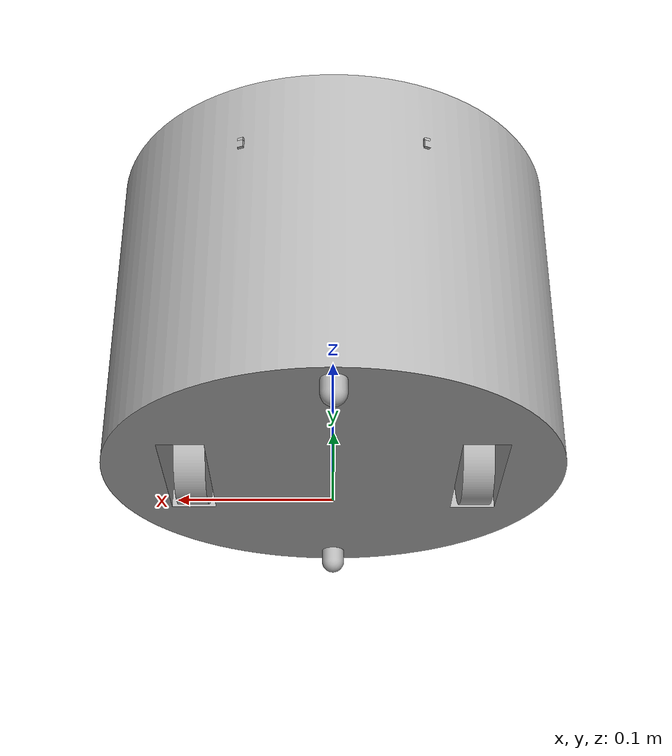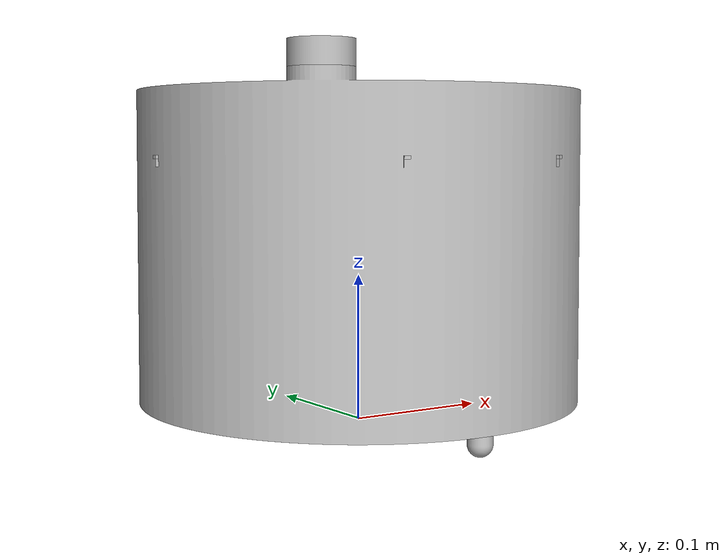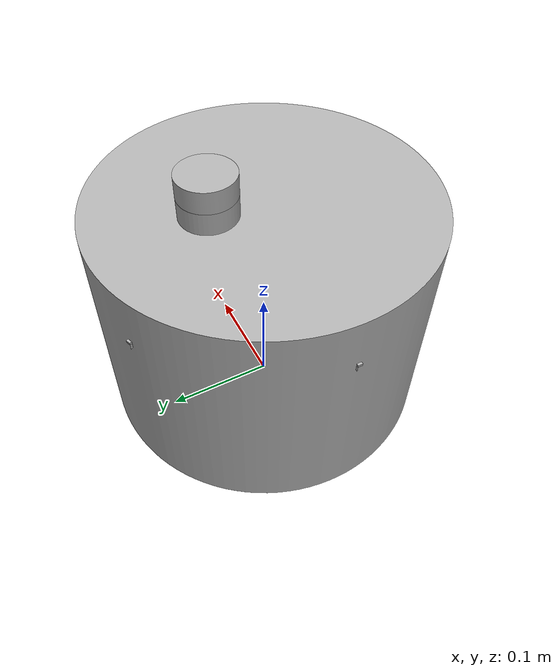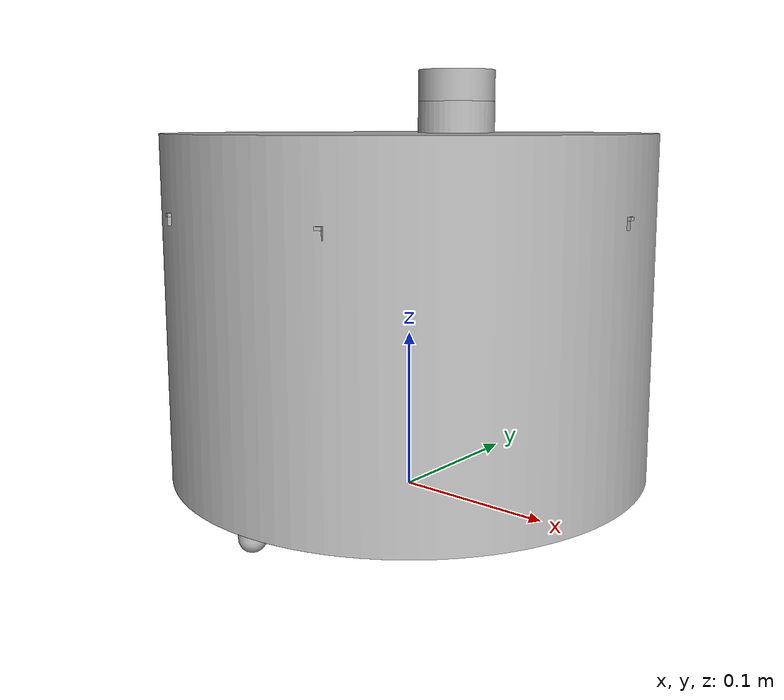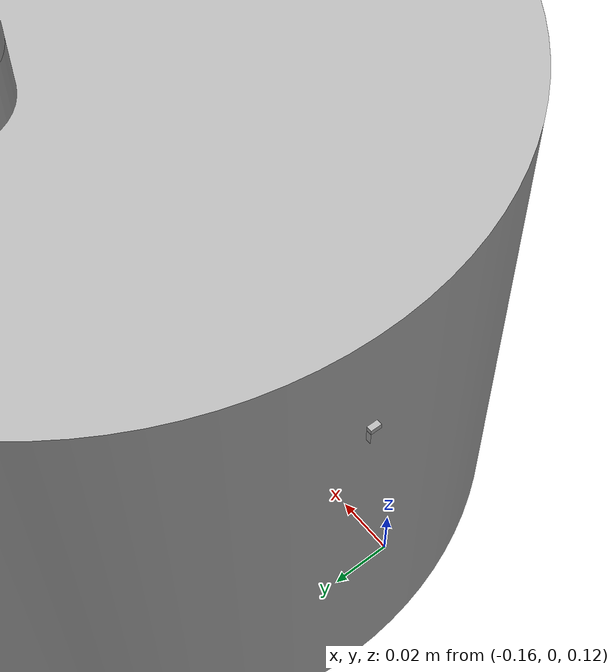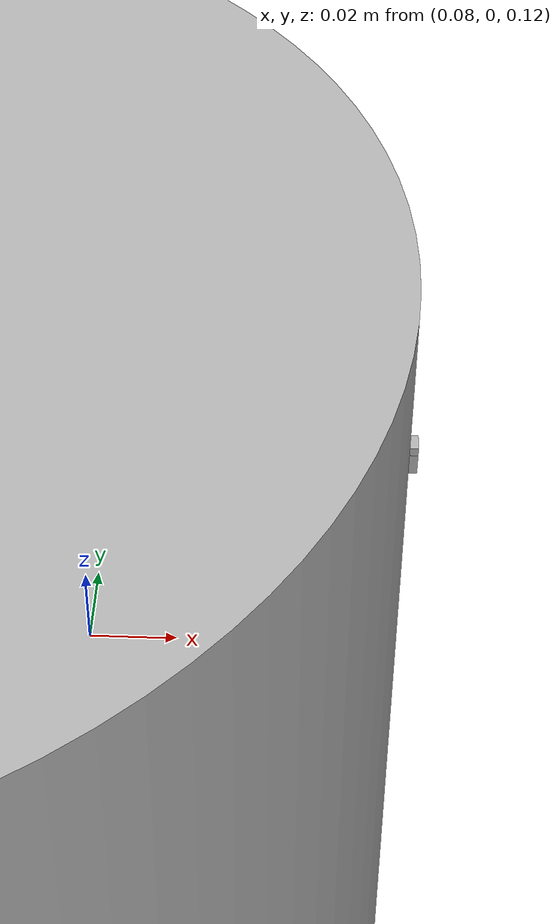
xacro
<?xml version="1.0" ?>
<robot name="stembotx2" xmlns:xacro="http://www.ros.org/wiki/xacro">

<xacro:include filename="$(find stembotx2_description)/urdf/materials.xacro" />
<xacro:include filename="$(find stembotx2_description)/urdf/stembotx2.trans" />
<xacro:include filename="$(find stembotx2_description)/urdf/stembotx2.gazebo" />
<link name="base_link">
  <inertial>
    <origin xyz="-1.7776082490155195e-08 0.0001322306206547696 0.12348052689329111" rpy="0 0 0"/>
    <mass value="113.06787878589044"/>
    <inertia ixx="1.066814" iyy="1.034936" izz="1.274348" ixy="-0.0" iyz="-0.001682" ixz="-0.0"/>
  </inertial>
  <visual>
    <origin xyz="0 0 0" rpy="0 0 0"/>
    <geometry>
      <mesh filename="file://$(find stembotx2_description)/meshes/base_link.stl" scale="0.001 0.001 0.001"/>
    </geometry>
    <material name="silver"/>
  </visual>
  <collision>
    <origin xyz="0 0 0" rpy="0 0 0"/>
    <geometry>
      <mesh filename="file://$(find stembotx2_description)/meshes/base_link.stl" scale="0.001 0.001 0.001"/>
    </geometry>
  </collision>
</link>

<link name="Agv_left_wheel_link_1">
  <inertial>
    <origin xyz="0.009999999999999995 3.552713678800501e-17 9.71445146547012e-17" rpy="0 0 0"/>
    <mass value="0.6042068071016569"/>
    <inertia ixx="0.00037" iyy="0.000205" izz="0.000205" ixy="0.0" iyz="-0.0" ixz="0.0"/>
  </inertial>
  <visual>
    <origin xyz="-0.081 -0.0 -0.035" rpy="0 0 0"/>
    <geometry>
      <mesh filename="file://$(find stembotx2_description)/meshes/Agv_left_wheel_link_1.stl" scale="0.001 0.001 0.001"/>
    </geometry>
    <material name="silver"/>
  </visual>
  <collision>
    <origin xyz="-0.081 -0.0 -0.035" rpy="0 0 0"/>
    <geometry>
      <mesh filename="file://$(find stembotx2_description)/meshes/Agv_left_wheel_link_1.stl" scale="0.001 0.001 0.001"/>
    </geometry>
  </collision>
</link>

<link name="Agv_right_wheel_link_1">
  <inertial>
    <origin xyz="-0.009999999999999967 -1.1302989323306157e-16 -6.938893903907228e-18" rpy="0 0 0"/>
    <mass value="0.6042068071016568"/>
    <inertia ixx="0.00037" iyy="0.000205" izz="0.000205" ixy="-0.0" iyz="-0.0" ixz="-0.0"/>
  </inertial>
  <visual>
    <origin xyz="0.082 -0.0 -0.035" rpy="0 0 0"/>
    <geometry>
      <mesh filename="file://$(find stembotx2_description)/meshes/Agv_right_wheel_link_1.stl" scale="0.001 0.001 0.001"/>
    </geometry>
    <material name="silver"/>
  </visual>
  <collision>
    <origin xyz="0.082 -0.0 -0.035" rpy="0 0 0"/>
    <geometry>
      <mesh filename="file://$(find stembotx2_description)/meshes/Agv_right_wheel_link_1.stl" scale="0.001 0.001 0.001"/>
    </geometry>
  </collision>
</link>

<link name="Agv_back_castor_wheel_link_1">
  <inertial>
    <origin xyz="-5.018998114294321e-13 0.0 -0.021799999999999986" rpy="0 0 0"/>
    <mass value="0.02104448198884657"/>
    <inertia ixx="1e-06" iyy="1e-06" izz="1e-06" ixy="-0.0" iyz="0.0" ixz="0.0"/>
  </inertial>
  <visual>
    <origin xyz="-0.0 -0.135 -0.031" rpy="0 0 0"/>
    <geometry>
      <mesh filename="file://$(find stembotx2_description)/meshes/Agv_back_castor_wheel_link_1.stl" scale="0.001 0.001 0.001"/>
    </geometry>
    <material name="silver"/>
  </visual>
  <collision>
    <origin xyz="-0.0 -0.135 -0.031" rpy="0 0 0"/>
    <geometry>
      <mesh filename="file://$(find stembotx2_description)/meshes/Agv_back_castor_wheel_link_1.stl" scale="0.001 0.001 0.001"/>
    </geometry>
  </collision>
</link>

<link name="Agv_front_castor_wheel_link_1">
  <inertial>
    <origin xyz="-5.018998114294321e-13 2.7755575615628914e-17 -0.021799999999999986" rpy="0 0 0"/>
    <mass value="0.02104448198884657"/>
    <inertia ixx="1e-06" iyy="1e-06" izz="1e-06" ixy="-0.0" iyz="-0.0" ixz="0.0"/>
  </inertial>
  <visual>
    <origin xyz="-0.0 0.135 -0.031" rpy="0 0 0"/>
    <geometry>
      <mesh filename="file://$(find stembotx2_description)/meshes/Agv_front_castor_wheel_link_1.stl" scale="0.001 0.001 0.001"/>
    </geometry>
    <material name="silver"/>
  </visual>
  <collision>
    <origin xyz="-0.0 0.135 -0.031" rpy="0 0 0"/>
    <geometry>
      <mesh filename="file://$(find stembotx2_description)/meshes/Agv_front_castor_wheel_link_1.stl" scale="0.001 0.001 0.001"/>
    </geometry>
  </collision>
</link>

<link name="Agv_scan_link_1">
  <inertial>
    <origin xyz="3.6187644375762656e-18 1.3877787807814457e-17 0.010000000000000009" rpy="0 0 0"/>
    <mass value="0.3082687791334986"/>
    <inertia ixx="5.8e-05" iyy="5.8e-05" izz="9.6e-05" ixy="0.0" iyz="0.0" ixz="0.0"/>
  </inertial>
  <visual>
    <origin xyz="-0.0 -0.0485 -0.246" rpy="0 0 0"/>
    <geometry>
      <mesh filename="file://$(find stembotx2_description)/meshes/Agv_scan_link_1.stl" scale="0.001 0.001 0.001"/>
    </geometry>
    <material name="silver"/>
  </visual>
  <collision>
    <origin xyz="-0.0 -0.0485 -0.246" rpy="0 0 0"/>
    <geometry>
      <mesh filename="file://$(find stembotx2_description)/meshes/Agv_scan_link_1.stl" scale="0.001 0.001 0.001"/>
    </geometry>
  </collision>
</link>

<link name="agv_tof1_1">
  <inertial>
    <origin xyz="-1.3463482236436564e-06 -3.752646745708299e-06 0.0010000000000000009" rpy="0 0 0"/>
    <mass value="0.0001258791185545458"/>
    <inertia ixx="0.0" iyy="0.0" izz="0.0" ixy="0.0" iyz="0.0" ixz="-0.0"/>
  </inertial>
  <visual>
    <origin xyz="0.057783 0.1395 -0.181" rpy="0 0 0"/>
    <geometry>
      <mesh filename="file://$(find stembotx2_description)/meshes/agv_tof1_1.stl" scale="0.001 0.001 0.001"/>
    </geometry>
    <material name="silver"/>
  </visual>
  <collision>
    <origin xyz="0.057783 0.1395 -0.181" rpy="0 0 0"/>
    <geometry>
      <mesh filename="file://$(find stembotx2_description)/meshes/agv_tof1_1.stl" scale="0.001 0.001 0.001"/>
    </geometry>
  </collision>
</link>

<link name="agv_tof5_1">
  <inertial>
    <origin xyz="1.3463482236436564e-06 -3.7526467457360546e-06 0.0010000000000000009" rpy="0 0 0"/>
    <mass value="0.00012587911855454543"/>
    <inertia ixx="0.0" iyy="0.0" izz="0.0" ixy="-0.0" iyz="-0.0" ixz="0.0"/>
  </inertial>
  <visual>
    <origin xyz="-0.057783 0.1395 -0.181" rpy="0 0 0"/>
    <geometry>
      <mesh filename="file://$(find stembotx2_description)/meshes/agv_tof5_1.stl" scale="0.001 0.001 0.001"/>
    </geometry>
    <material name="silver"/>
  </visual>
  <collision>
    <origin xyz="-0.057783 0.1395 -0.181" rpy="0 0 0"/>
    <geometry>
      <mesh filename="file://$(find stembotx2_description)/meshes/agv_tof5_1.stl" scale="0.001 0.001 0.001"/>
    </geometry>
  </collision>
</link>

<link name="agv_tof6_1">
  <inertial>
    <origin xyz="-4.7737763238242525e-06 1.4967252291981122e-11 0.0010000000000000286" rpy="0 0 0"/>
    <mass value="0.00012587911949657815"/>
    <inertia ixx="0.0" iyy="0.0" izz="0.0" ixy="-0.0" iyz="0.0" ixz="-0.0"/>
  </inertial>
  <visual>
    <origin xyz="0.150993 -0.0 -0.181" rpy="0 0 0"/>
    <geometry>
      <mesh filename="file://$(find stembotx2_description)/meshes/agv_tof6_1.stl" scale="0.001 0.001 0.001"/>
    </geometry>
    <material name="silver"/>
  </visual>
  <collision>
    <origin xyz="0.150993 -0.0 -0.181" rpy="0 0 0"/>
    <geometry>
      <mesh filename="file://$(find stembotx2_description)/meshes/agv_tof6_1.stl" scale="0.001 0.001 0.001"/>
    </geometry>
  </collision>
</link>

<link name="agv_tof4_1">
  <inertial>
    <origin xyz="-1.3463482236436564e-06 3.752646745708299e-06 0.0010000000000000286" rpy="0 0 0"/>
    <mass value="0.00012587911855454584"/>
    <inertia ixx="0.0" iyy="0.0" izz="0.0" ixy="-0.0" iyz="0.0" ixz="-0.0"/>
  </inertial>
  <visual>
    <origin xyz="0.057783 -0.1395 -0.181" rpy="0 0 0"/>
    <geometry>
      <mesh filename="file://$(find stembotx2_description)/meshes/agv_tof4_1.stl" scale="0.001 0.001 0.001"/>
    </geometry>
    <material name="silver"/>
  </visual>
  <collision>
    <origin xyz="0.057783 -0.1395 -0.181" rpy="0 0 0"/>
    <geometry>
      <mesh filename="file://$(find stembotx2_description)/meshes/agv_tof4_1.stl" scale="0.001 0.001 0.001"/>
    </geometry>
  </collision>
</link>

<link name="agv_tof3_1">
  <inertial>
    <origin xyz="1.3463482236436564e-06 3.752646745708299e-06 0.0010000000000000009" rpy="0 0 0"/>
    <mass value="0.00012587911855454543"/>
    <inertia ixx="0.0" iyy="0.0" izz="0.0" ixy="0.0" iyz="0.0" ixz="0.0"/>
  </inertial>
  <visual>
    <origin xyz="-0.057783 -0.1395 -0.181" rpy="0 0 0"/>
    <geometry>
      <mesh filename="file://$(find stembotx2_description)/meshes/agv_tof3_1.stl" scale="0.001 0.001 0.001"/>
    </geometry>
    <material name="silver"/>
  </visual>
  <collision>
    <origin xyz="-0.057783 -0.1395 -0.181" rpy="0 0 0"/>
    <geometry>
      <mesh filename="file://$(find stembotx2_description)/meshes/agv_tof3_1.stl" scale="0.001 0.001 0.001"/>
    </geometry>
  </collision>
</link>

<link name="agv_tof2_1">
  <inertial>
    <origin xyz="4.773776323796497e-06 1.4967246071641936e-11 0.0010000000000000009" rpy="0 0 0"/>
    <mass value="0.00012587911949657888"/>
    <inertia ixx="0.0" iyy="0.0" izz="0.0" ixy="0.0" iyz="-0.0" ixz="0.0"/>
  </inertial>
  <visual>
    <origin xyz="-0.150993 -0.0 -0.181" rpy="0 0 0"/>
    <geometry>
      <mesh filename="file://$(find stembotx2_description)/meshes/agv_tof2_1.stl" scale="0.001 0.001 0.001"/>
    </geometry>
    <material name="silver"/>
  </visual>
  <collision>
    <origin xyz="-0.150993 -0.0 -0.181" rpy="0 0 0"/>
    <geometry>
      <mesh filename="file://$(find stembotx2_description)/meshes/agv_tof2_1.stl" scale="0.001 0.001 0.001"/>
    </geometry>
  </collision>
</link>

<joint name="Revolute 6" type="continuous">
  <origin xyz="0.081 0.0 0.035" rpy="0 0 0"/>
  <parent link="base_link"/>
  <child link="Agv_left_wheel_link_1"/>
  <axis xyz="1.0 0.0 0.0"/>
</joint>

<joint name="Revolute 7" type="continuous">
  <origin xyz="-0.082 0.0 0.035" rpy="0 0 0"/>
  <parent link="base_link"/>
  <child link="Agv_right_wheel_link_1"/>
  <axis xyz="-1.0 0.0 0.0"/>
</joint>

<joint name="Rigid 8" type="fixed">
  <origin xyz="0.0 0.135 0.031" rpy="0 0 0"/>
  <parent link="base_link"/>
  <child link="Agv_back_castor_wheel_link_1"/>
</joint>

<joint name="Rigid 9" type="fixed">
  <origin xyz="0.0 -0.135 0.031" rpy="0 0 0"/>
  <parent link="base_link"/>
  <child link="Agv_front_castor_wheel_link_1"/>
</joint>

<joint name="Rigid 10" type="fixed">
  <origin xyz="0.0 0.0485 0.246" rpy="0 0 0"/>
  <parent link="base_link"/>
  <child link="Agv_scan_link_1"/>
</joint>

<joint name="Rigid 11" type="fixed">
  <origin xyz="-0.057783 -0.1395 0.181" rpy="0 0 0"/>
  <parent link="base_link"/>
  <child link="agv_tof1_1"/>
</joint>

<joint name="Rigid 12" type="fixed">
  <origin xyz="0.057783 -0.1395 0.181" rpy="0 0 0"/>
  <parent link="base_link"/>
  <child link="agv_tof5_1"/>
</joint>

<joint name="Rigid 13" type="fixed">
  <origin xyz="-0.150993 0.0 0.181" rpy="0 0 0"/>
  <parent link="base_link"/>
  <child link="agv_tof6_1"/>
</joint>

<joint name="Rigid 14" type="fixed">
  <origin xyz="-0.057783 0.1395 0.181" rpy="0 0 0"/>
  <parent link="base_link"/>
  <child link="agv_tof4_1"/>
</joint>

<joint name="Rigid 15" type="fixed">
  <origin xyz="0.057783 0.1395 0.181" rpy="0 0 0"/>
  <parent link="base_link"/>
  <child link="agv_tof3_1"/>
</joint>

<joint name="Rigid 16" type="fixed">
  <origin xyz="0.150993 0.0 0.181" rpy="0 0 0"/>
  <parent link="base_link"/>
  <child link="agv_tof2_1"/>
</joint>

</robot>

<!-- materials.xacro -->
<robot name="Test" xmlns:xacro="http://www.ros.org/wiki/xacro" >

<material name="silver">
  <color rgba="0.700 0.700 0.700 1.000"/>
</material>

</robot>

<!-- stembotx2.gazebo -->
<robot name="Test" xmlns:xacro="http://www.ros.org/wiki/xacro" >

<xacro:property name="body_color" value="Gazebo/Silver" />

<gazebo reference="base_link">
  <material>${body_color}</material>
  <mu1>0.2</mu1>
  <mu2>0.2</mu2>
  <self_collide>true</self_collide>
  <gravity>true</gravity>
</gazebo>

<gazebo reference="Agv_left_wheel_link_1">
  <material>${body_color}</material>
  <mu1>0.2</mu1>
  <mu2>0.2</mu2>
  <self_collide>true</self_collide>
</gazebo>

<gazebo reference="Agv_right_wheel_link_1">
  <material>${body_color}</material>
  <mu1>0.2</mu1>
  <mu2>0.2</mu2>
  <self_collide>true</self_collide>
</gazebo>

<gazebo reference="Agv_back_castor_wheel_link_1">
  <material>${body_color}</material>
  <mu1>0.2</mu1>
  <mu2>0.2</mu2>
  <self_collide>true</self_collide>
</gazebo>

<gazebo reference="Agv_front_castor_wheel_link_1">
  <material>${body_color}</material>
  <mu1>0.2</mu1>
  <mu2>0.2</mu2>
  <self_collide>true</self_collide>
</gazebo>

<gazebo reference="Agv_scan_link_1">
  <material>${body_color}</material>
  <mu1>0.2</mu1>
  <mu2>0.2</mu2>
  <self_collide>true</self_collide>
</gazebo>

<gazebo reference="agv_tof1_1">
  <material>${body_color}</material>
  <mu1>0.2</mu1>
  <mu2>0.2</mu2>
  <self_collide>true</self_collide>
</gazebo>

<gazebo reference="agv_tof5_1">
  <material>${body_color}</material>
  <mu1>0.2</mu1>
  <mu2>0.2</mu2>
  <self_collide>true</self_collide>
</gazebo>

<gazebo reference="agv_tof6_1">
  <material>${body_color}</material>
  <mu1>0.2</mu1>
  <mu2>0.2</mu2>
  <self_collide>true</self_collide>
</gazebo>

<gazebo reference="agv_tof4_1">
  <material>${body_color}</material>
  <mu1>0.2</mu1>
  <mu2>0.2</mu2>
  <self_collide>true</self_collide>
</gazebo>

<gazebo reference="agv_tof3_1">
  <material>${body_color}</material>
  <mu1>0.2</mu1>
  <mu2>0.2</mu2>
  <self_collide>true</self_collide>
</gazebo>

<gazebo reference="agv_tof2_1">
  <material>${body_color}</material>
  <mu1>0.2</mu1>
  <mu2>0.2</mu2>
  <self_collide>true</self_collide>
</gazebo>

<gazebo reference="Agv_scan_link_1">
  <sensor type="gpu_ray" name="rp_c1_lidar">
    <pose>0 0 0 0 0 0</pose>
    <visualize>true</visualize>
    <update_rate>10</update_rate>
    <ray>
      <scan>
        <horizontal>
          <samples>360</samples>
          <resolution>1</resolution>
          <min_angle>-3.14159</min_angle>
          <max_angle>3.14159</max_angle>
        </horizontal>
      </scan>
      <range>
        <min>0.10</min>
        <max>12.0</max>
        <resolution>0.01</resolution>
      </range>
      <noise>
        <type>gaussian</type>
        <mean>0.0</mean>
        <stddev>0.01</stddev>
      </noise>
    </ray>
    <plugin name="gazebo_ros_head_hokuyo_controller" filename="libgazebo_ros_ray_sensor.so">
      <ros>
        <namespace>/</namespace>
        <remapping>~/out:=scan</remapping>
      </ros>
      <output_type>sensor_msgs/LaserScan</output_type>
      <frame_name>Agv_scan_link_1</frame_name>
    </plugin>
  </sensor>
</gazebo>

<link name="imu_link"/>

    <joint name="imu_to_base_link" type="fixed">
      <parent link="base_link"/>
      <child link="imu_link"/>
      <origin xyz="0 0 0" rpy="0 0 0"/>
    </joint>

    <gazebo reference="imu_link">
      <gravity>true</gravity>
      <sensor name="imu_sensor" type="imu">
      <always_on>true</always_on>
      <update_rate>20</update_rate>
      <visualize>true</visualize>
      <topic>__default_topic__</topic>
      <plugin filename="libgazebo_ros_imu_sensor.so" name="imu_plugin">
          <ros>
            <remapping>~/out:=imu/data</remapping>
          </ros>
          <topicName>imu/data</topicName>
          <bodyName>imu_link</bodyName>
          <updateRateHZ>10.0</updateRateHZ>
          <gaussianNoise>0.0</gaussianNoise>
          <xyzOffset>0 0 0</xyzOffset>
          <rpyOffset>0 0 0</rpyOffset>
          <frameName>imu_link</frameName>
          <initialOrientationAsReference>true</initialOrientationAsReference>
      </plugin>
      <pose>0 0 0 0 0 0</pose>
      </sensor>
    </gazebo>

  <gazebo reference="agv_tof1_1">
  <sensor type="ray" name="tof1">
    <pose>0 0 0 0 0 0</pose>
    <visualize>true</visualize>
    <update_rate>10</update_rate>
    <ray>
      <scan>
        <horizontal>
          <samples>1</samples>
          <resolution>1</resolution>
          <min_angle>0</min_angle>
          <max_angle>0</max_angle>
        </horizontal>
      </scan>
      <range>
        <min>0.01</min>
        <max>2.0</max>
        <resolution>0.01</resolution>
      </range>
    </ray>
    <plugin name="tof1_controller" filename="libgazebo_ros_ray_sensor.so">
      <ros>
        <namespace>/</namespace>
        <remapping>~/out:=tof1</remapping>
      </ros>
      <output_type>sensor_msgs/Range</output_type>
      <radiation_type>infrared</radiation_type>
      <frame_name>agv_tof1_1</frame_name>
    </plugin>
  </sensor>
</gazebo>

<gazebo reference="agv_tof2_1">
  <sensor type="ray" name="tof2">
    <pose>0 0 0 0 0 0</pose>
    <visualize>true</visualize>
    <update_rate>10</update_rate>
    <ray>
      <scan>
        <horizontal>
          <samples>1</samples>
          <resolution>1</resolution>
          <min_angle>0</min_angle>
          <max_angle>0</max_angle>
        </horizontal>
      </scan>
      <range>
        <min>0.01</min>
        <max>2.0</max>
        <resolution>0.01</resolution>
      </range>
    </ray>
    <plugin name="tof2_controller" filename="libgazebo_ros_ray_sensor.so">
      <ros>
        <namespace>/</namespace>
        <remapping>~/out:=tof2</remapping>
      </ros>
      <output_type>sensor_msgs/Range</output_type>
      <radiation_type>infrared</radiation_type>
      <frame_name>agv_tof2_1</frame_name>
    </plugin>
  </sensor>

</gazebo>

<gazebo reference="agv_tof3_1">
  <sensor type="ray" name="tof3">
    <pose>0 0 0 0 0 0</pose>
    <visualize>true</visualize>
    <update_rate>10</update_rate>
    <ray>
      <scan>
        <horizontal>
          <samples>1</samples>
          <resolution>1</resolution>
          <min_angle>0</min_angle>
          <max_angle>0</max_angle>
        </horizontal>
      </scan>
      <range>
        <min>0.01</min>
        <max>2.0</max>
        <resolution>0.01</resolution>
      </range>
    </ray>
    <plugin name="tof3_controller" filename="libgazebo_ros_ray_sensor.so">
      <ros>
        <namespace>/</namespace>
        <remapping>~/out:=tof3</remapping>
      </ros>
      <output_type>sensor_msgs/Range</output_type>
      <radiation_type>infrared</radiation_type>
      <frame_name>agv_tof3_1</frame_name>
    </plugin>
  </sensor>
</gazebo>

<gazebo reference="agv_tof4_1">
  <sensor type="ray" name="tof4">
    <pose>0 0 0 0 0 0</pose>
    <visualize>true</visualize>
    <update_rate>10</update_rate>
    <ray>
      <scan>
        <horizontal>
          <samples>1</samples>
          <resolution>1</resolution>
          <min_angle>0</min_angle>
          <max_angle>0</max_angle>
        </horizontal>
      </scan>
      <range>
        <min>0.01</min>
        <max>2.0</max>
        <resolution>0.01</resolution>
      </range>
    </ray>
    <plugin name="tof4_controller" filename="libgazebo_ros_ray_sensor.so">
      <ros>
        <namespace>/</namespace>
        <remapping>~/out:=tof4</remapping>
      </ros>
      <output_type>sensor_msgs/Range</output_type>
      <radiation_type>infrared</radiation_type>
      <frame_name>agv_tof4_1</frame_name>
    </plugin>
  </sensor>
</gazebo>

<gazebo reference="agv_tof5_1">
  <sensor type="ray" name="tof5">
    <pose>0 0 0 0 0 0</pose>
    <visualize>true</visualize>
    <update_rate>10</update_rate>
    <ray>
      <scan>
        <horizontal>
          <samples>1</samples>
          <resolution>1</resolution>
          <min_angle>0</min_angle>
          <max_angle>0</max_angle>
        </horizontal>
      </scan>
      <range>
        <min>0.01</min>
        <max>2.0</max>
        <resolution>0.01</resolution>
      </range>
    </ray>
    <plugin name="tof5_controller" filename="libgazebo_ros_ray_sensor.so">
      <ros>
        <namespace>/</namespace>
        <remapping>~/out:=tof5</remapping>
      </ros>
      <output_type>sensor_msgs/Range</output_type>
      <radiation_type>infrared</radiation_type>
      <frame_name>agv_tof5_1</frame_name>
    </plugin>
  </sensor>
</gazebo>

<gazebo reference="agv_tof6_1">
  <sensor type="ray" name="tof6">
    <pose>0 0 0 0 0 0</pose>
    <visualize>true</visualize>
    <update_rate>10</update_rate>
    <ray>
      <scan>
        <horizontal>
          <samples>1</samples>
          <resolution>1</resolution>
          <min_angle>0</min_angle>
          <max_angle>0</max_angle>
        </horizontal>
      </scan>
      <range>
        <min>0.01</min>
        <max>2.0</max>
        <resolution>0.01</resolution>
      </range>
    </ray>
    <plugin name="tof6_controller" filename="libgazebo_ros_ray_sensor.so">
      <ros>
        <namespace>/</namespace>
        <remapping>~/out:=tof6</remapping>
      </ros>
      <output_type>sensor_msgs/Range</output_type>
      <radiation_type>infrared</radiation_type>
      <frame_name>agv_tof6_1</frame_name>
    </plugin>
  </sensor>
</gazebo>

</robot>
